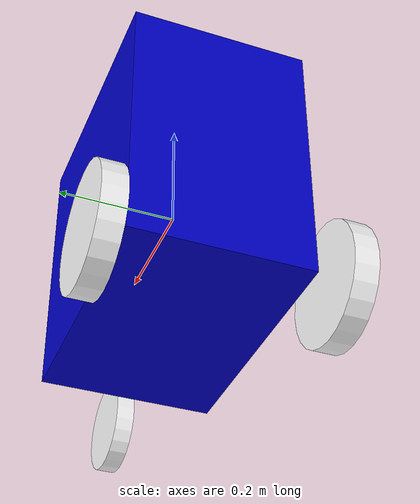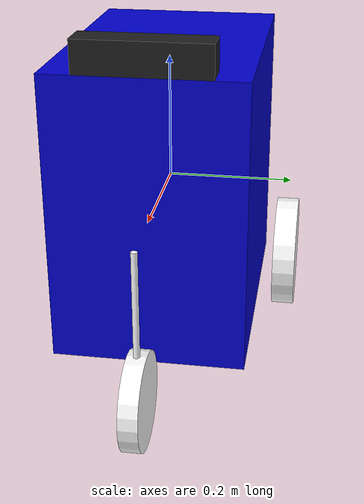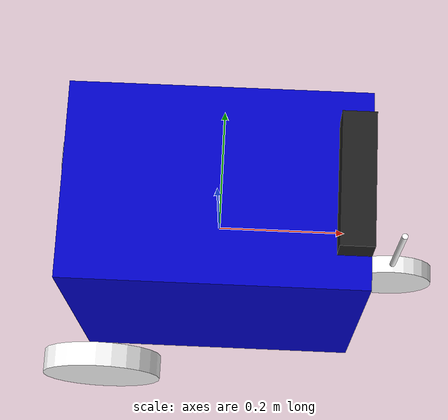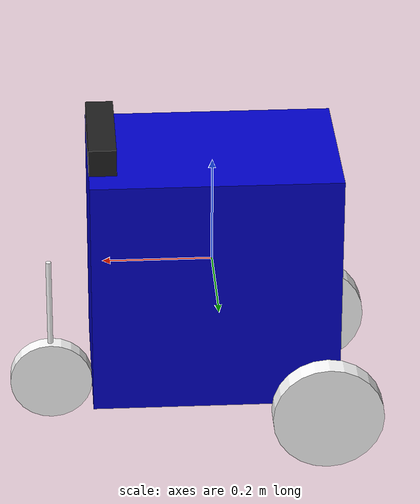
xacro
<?xml version="1.0"?>
<robot name="car" xmlns:xacro="http://ros.org/wiki/xacro" >

 <material name="blue">
 	<color rgba="0 0 0.8 1"/>
 </material>

 <material name="white">
	 <color rgba="1 1 1 1"/>
 </material>

 <xacro:property name="m" value="15" />
 <xacro:property name="l1" value="0.45" />
 <xacro:property name="b1" value="0.3" />
 <xacro:property name="h1" value="0.45" />

 <xacro:property name="r2" value="0.05" />

	<link name="chassis">
		<visual>
			<origin rpy="0 0 0" xyz="0 0 0"/>
			<geometry>
				<box size="${l1} ${b1} ${h1}"/>
			</geometry>
			<material name="blue"/>

		</visual>

		<collision name="collision_chassis">
			<geometry>
				<box size="${l1} ${b1} ${h1}"/>
			</geometry>
		</collision>

		<inertial>
			<mass value="${m}"/>
			<origin rpy="0 0 0" xyz="0 0 0"/>
			<inertia ixx="${m*h1*b1/12.0}" ixy="0" ixz="0" iyy="${m*l1*h1/12.0}" iyz="0" izz="${m*l1*b1/12.0}"/>
		</inertial>

	</link>

 <xacro:property name="l3" value="0.04" />
 <xacro:property name="r3" value="0.1016" />
 <xacro:property name="m3" value="0.3" />

	<link name="right_wheel">
		<visual>
			<origin rpy="0 1.5707 1.5707" xyz="0 0 0"/>
			<geometry>
					<cylinder radius="${r3}" length="${l3}" />
			</geometry>
			<material name="white"/>
		</visual>

		<collision name="collision_right_wheel">
		<origin rpy="0 1.5707 1.5707" xyz="0 0 0"/>
			<geometry>
				<cylinder radius="${r3}" length="${l3}" />
			</geometry>
		</collision>

		<inertial>
			<mass value="${m3}"/>
			<origin rpy="0 1.5707 1.5707" xyz="0 0 0"/>
			<inertia ixx="${m3*((3*r3*r3)+(l3*l3))/12.0}" ixy="0" ixz="0" iyy="${m3*((3*r3*r3)+(l3*l3))/12.0}" iyz="0" izz="${(m3*r3*r3)/2.0}"/>
		</inertial>
	</link>

	<joint name="joint_right_wheel_chassis" type="continuous">
		<origin rpy="0 0 0" xyz="-0.20 -${b1/2+0.04} -0.225"/>
		<child link="right_wheel"/>
		<parent link="chassis"/>
		<axis xyz="0 1 0"/>
		<limit effort="10000" velocity="1000"/>
		<joint_properties damping="1.0" friction="1.0"/>
	</joint>

	<link name="left_wheel">
		<visual>
			<origin rpy="0 1.5707 1.5707" xyz="0 0 0"/>
			<geometry>
					<cylinder radius="${r3}" length="${l3}" />
			</geometry>
			<material name="white"/>
		</visual>

		<collision name="collision_left_wheel">
		<origin rpy="0 1.5707 1.5707" xyz="0 0 0"/>
			<geometry>
				<cylinder radius="${r3}" length="${l3}" />
			</geometry>
		</collision>

		<inertial>
			<mass value="${m3}"/>
			<origin rpy="0 1.5707 1.5707" xyz="0 0 0"/>
			<inertia ixx="${m3*((3*r3*r3)+(l3*l3))/12.0}" ixy="0" ixz="0" iyy="${m3*((3*r3*r3)+(l3*l3))/12.0}" iyz="0" izz="${(m3*r3*r3)/2.0}"/>
		</inertial>
	</link>

	<joint name="joint_left_wheel_chassis" type="continuous">
		<origin rpy="0 0 0" xyz="-0.20 ${b1/2+0.04} -0.225"/>
		<child link="left_wheel"/>
		<parent link="chassis"/>
		<axis xyz="0 1 0"/>
		<limit effort="10000" velocity="1000"/>
		<joint_properties damping="1.0" friction="1.0"/>
	</joint>

<xacro:property name="l4" value="0.03" />
<xacro:property name="r4" value="0.0762" />
<xacro:property name="m4" value="0.3" />

	<link name="front_wheel">
		<visual>
			<origin rpy="0 1.5707 1.5707" xyz="0 0 0"/>
			<geometry>
					<cylinder radius="${r4}" length="${l4}" />
			</geometry>
			<material name="white"/>
		</visual>

		<collision name="collision_front_wheel">
		<origin rpy="0 1.5707 1.5707" xyz="0 0 0"/>
			<geometry>
				<cylinder radius="${r4}" length="${l4}" />
			</geometry>
		</collision>

		<inertial>
			<mass value="${m4}"/>
			<origin rpy="0 1.5707 1.5707" xyz="0 0 0"/>
			<inertia ixx="${m4*((3*r4*r4)+(l4*l4))/12.0}" ixy="0" ixz="0" iyy="${m4*((3*r4*r4)+(l4*l4))/12.0}" iyz="0" izz="${(m4*r4*r4)/2.0}"/>
		</inertial>
	</link>

	<joint name="joint_front_wheel_chassis" type="continuous">
		<origin rpy="0 0 0" xyz="0 0 -0.145"/>
		<child link="front_wheel"/>
		<parent link="axle"/>
		<axis xyz="0 1 0"/>
		<limit effort="10000" velocity="1000"/>
		<joint_properties damping="1.0" friction="1.0"/>
	</joint>

 <xacro:property name="l5" value="0.20" />
 <xacro:property name="r5" value="0.005" />
 <xacro:property name="m5" value="1.1" />

	<link name="axle">
		<visual>
			<origin rpy="0 0 0" xyz="0 0 0"/>
			<geometry>
					<cylinder radius="${r5}" length="${l5}" />
			</geometry>
			<material name="white"/>
		</visual>

		<collision name="collision_axle">
		<origin rpy="0 0 0" xyz="0 0 0"/>
			<geometry>
				<cylinder radius="${r5}" length="${l5}" />
			</geometry>
		</collision>

		<inertial>
			<mass value="${m5}"/>
			<origin rpy="0 0 0" xyz="0 0 0"/>
			<inertia ixx="${m5*((3*r5*r5)+(l5*l5))/12.0}" ixy="0" ixz="0" iyy="${m5*((3*r5*r5)+(l5*l5))/12.0}" iyz="0" izz="${(m5*r5*r5)/2.0}"/>
		</inertial>
	</link>

	<joint name="joint_axle" type="revolute">
		<origin rpy="0 0 0" xyz="0.30 0 -0.1"/>
		<child link="axle"/>
		<parent link="chassis"/>
		<axis xyz="0 0 1"/>
		<limit lower="-1.5" upper="1.5" effort="100" velocity="10"/>
		<joint_properties damping="1.0" friction="1.0"/>
	</joint>

 <xacro:property name="mk" value="0.1" />
 <xacro:property name="lk" value="0.05" />
 <xacro:property name="bk" value="0.2" />
 <xacro:property name="hk" value="0.05" />

	<!-- Kinect Sensor -->
	<link name="kinect">
		<visual>
			<origin rpy="0 0 0" xyz="0 0 0"/>
			<geometry>
					<box size="${lk} ${bk} ${hk}"/>
			</geometry>
		</visual>

		<collision name="collision_kinect">
			<geometry>
					<box size="${lk} ${bk} ${hk}"/>
			</geometry>
		</collision>

		<inertial>
			<mass value="${mk}"/>
			<origin rpy="0 0 0" xyz="0 0 0"/>
			<inertia ixx="${mk*hk*bk/12.0}" ixy="0" ixz="0" iyy="${mk*lk*hk/12.0}" iyz="0" izz="${mk*lk*bk/12.0}"/>
		</inertial>
	</link>

	<joint name="joint_kinect_chassis" type="fixed">
		<origin rpy="0 0 0" xyz="${l1/2-lk/2} 0 ${h1/2+hk/2}"/>
		<child link="kinect"/>
		<parent link="chassis"/>

	</joint>

	<link name="kinect_link" />

	<joint name="joint_kinect_link" type="fixed">
		<origin rpy="-1.5707 0 -1.5707" xyz="${l1/2} 0 ${h1/2+hk/2}"/>
		<child link="kinect_link"/>
		<parent link="chassis"/>

	</joint>

<xacro:include filename="$(find navros_pkg)/urdf/gazebo_plugins.urdf.xacro" />

</robot>
